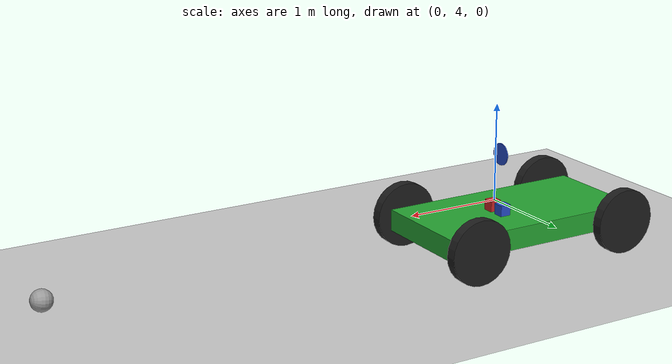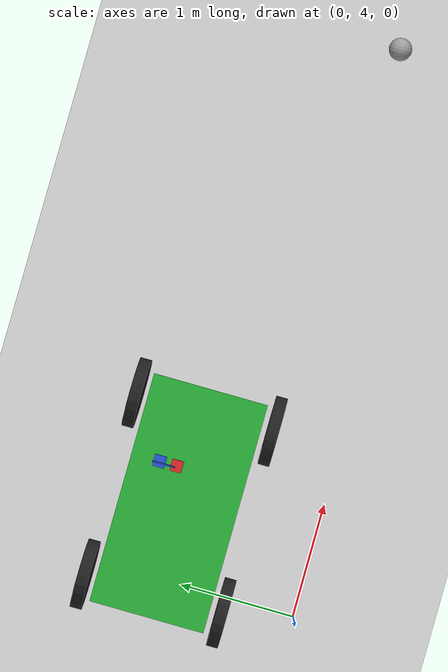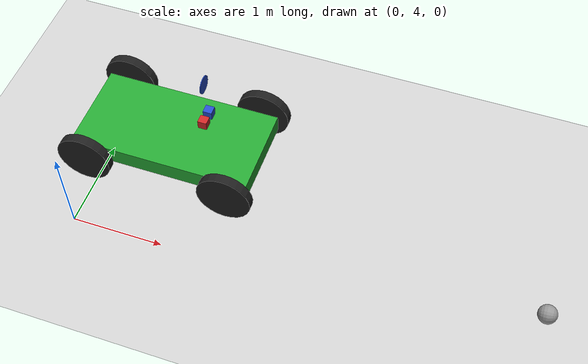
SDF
<sdf version="1.6">
 <world name="default">
  <model name="ground_plane">
   <static>1</static>
   <link name="link">
    <collision name="collision">
     <geometry><plane><normal>0 0 1</normal><size>100 100</size></plane></geometry>
     <surface><friction><ode><mu>100</mu><mu2>50</mu2></ode></friction></surface>
    </collision>
    <visual name="visual">
     <cast_shadows>0</cast_shadows>
     <geometry><plane><normal>0 0 1</normal><size>100 100</size></plane></geometry>
     <material>
      <script><uri>file://media/materials/scripts/gazebo.material</uri><name>Gazebo/Grey</name></script>
     </material>
    </visual>
   </link>
  </model>
  <model name="car">
   <link name="chassis">
    <pose>0 0 0.3 0 -0 0</pose>
    <collision name="collision"><geometry><box><size>2 1 0.2</size></box></geometry></collision>
    <visual name="visual">
     <geometry><box><size>2 1 0.2</size></box></geometry>
     <material>
      <script><uri>file://media/materials/scripts/gazebo.material</uri><name>Gazebo/Green</name></script>
     </material>
    </visual>
    <inertial>
     <inertia><ixx>1</ixx><ixy>0</ixy><ixz>0</ixz><iyy>1</iyy><iyz>0</iyz><izz>1</izz></inertia>
     <mass>1</mass>
    </inertial>
   </link>
   <link name="front_left_wheel">
    <pose>0.8 0.6 0.3 -0 1.5707 1.5707</pose>
    <collision name="collision">
     <geometry><cylinder><radius>0.3</radius><length>0.1</length></cylinder></geometry>
    </collision>
    <visual name="visual">
     <geometry><cylinder><radius>0.3</radius><length>0.1</length></cylinder></geometry>
     <material>
      <script><uri>file://media/materials/scripts/gazebo.material</uri><name>Gazebo/Black</name></script>
     </material>
    </visual>
    <inertial>
     <inertia><ixx>1</ixx><ixy>0</ixy><ixz>0</ixz><iyy>1</iyy><iyz>0</iyz><izz>1</izz></inertia>
     <mass>1</mass>
    </inertial>
   </link>
   <link name="front_right_wheel">
    <pose>0.8 -0.6 0.3 -0 1.5707 1.5707</pose>
    <collision name="collision">
     <geometry><cylinder><radius>0.3</radius><length>0.1</length></cylinder></geometry>
    </collision>
    <visual name="visual">
     <geometry><cylinder><radius>0.3</radius><length>0.1</length></cylinder></geometry>
     <material>
      <script><uri>file://media/materials/scripts/gazebo.material</uri><name>Gazebo/Black</name></script>
     </material>
    </visual>
    <inertial>
     <inertia><ixx>1</ixx><ixy>0</ixy><ixz>0</ixz><iyy>1</iyy><iyz>0</iyz><izz>1</izz></inertia>
     <mass>1</mass>
    </inertial>
   </link>
   <link name="back_right_wheel">
    <pose>-0.8 -0.6 0.3 -0 1.5707 1.5707</pose>
    <collision name="collision">
     <geometry><cylinder><radius>0.3</radius><length>0.1</length></cylinder></geometry>
    </collision>
    <visual name="visual">
     <geometry><cylinder><radius>0.3</radius><length>0.1</length></cylinder></geometry>
     <material>
      <script><uri>file://media/materials/scripts/gazebo.material</uri><name>Gazebo/Black</name></script>
     </material>
    </visual>
    <inertial>
     <inertia><ixx>1</ixx><ixy>0</ixy><ixz>0</ixz><iyy>1</iyy><iyz>0</iyz><izz>1</izz></inertia>
     <mass>1</mass>
    </inertial>
   </link>
   <link name="back_left_wheel">
    <pose>-0.8 0.6 0.3 -0 1.5707 1.5707</pose>
    <collision name="collision">
     <geometry><cylinder><radius>0.3</radius><length>0.1</length></cylinder></geometry>
    </collision>
    <visual name="visual">
     <geometry><cylinder><radius>0.3</radius><length>0.1</length></cylinder></geometry>
     <material>
      <script><uri>file://media/materials/scripts/gazebo.material</uri><name>Gazebo/Black</name></script>
     </material>
    </visual>
    <inertial>
     <inertia><ixx>1</ixx><ixy>0</ixy><ixz>0</ixz><iyy>1</iyy><iyz>0</iyz><izz>1</izz></inertia>
     <mass>1</mass>
    </inertial>
   </link>
   <link name="gas_pedal">
    <pose>0.3 0.1 0.5 0 -0 0</pose>
    <collision name="collision"><geometry><box><size>0.1 0.1 0.1</size></box></geometry></collision>
    <visual name="visual">
     <geometry><box><size>0.1 0.1 0.1</size></box></geometry>
     <material>
      <script><uri>file://media/materials/scripts/gazebo.material</uri><name>Gazebo/Red</name></script>
     </material>
    </visual>
    <inertial>
     <inertia><ixx>1</ixx><ixy>0</ixy><ixz>0</ixz><iyy>1</iyy><iyz>0</iyz><izz>1</izz></inertia>
     <mass>1</mass>
    </inertial>
   </link>
   <link name="brake_pedal">
    <pose>0.3 0.25 0.5 0 -0 0</pose>
    <collision name="collision"><geometry><box><size>0.1 0.1 0.1</size></box></geometry></collision>
    <visual name="visual">
     <geometry><box><size>0.1 0.1 0.1</size></box></geometry>
     <material>
      <script><uri>file://media/materials/scripts/gazebo.material</uri><name>Gazebo/Blue</name></script>
     </material>
    </visual>
    <inertial>
     <inertia><ixx>1</ixx><ixy>0</ixy><ixz>0</ixz><iyy>1</iyy><iyz>0</iyz><izz>1</izz></inertia>
     <mass>1</mass>
    </inertial>
   </link>
   <link name="steering_wheel">
    <pose>0.3 0.2 1 0 1.5707 0</pose>
    <collision name="collision">
     <geometry><cylinder><radius>0.1</radius><length>0.01</length></cylinder></geometry>
    </collision>
    <visual name="visual">
     <geometry><cylinder><radius>0.1</radius><length>0.01</length></cylinder></geometry>
     <material>
      <script><uri>file://media/materials/scripts/gazebo.material</uri><name>Gazebo/Blue</name></script>
     </material>
    </visual>
    <inertial>
     <inertia><ixx>1</ixx><ixy>0</ixy><ixz>0</ixz><iyy>1</iyy><iyz>0</iyz><izz>1</izz></inertia>
     <mass>1</mass>
    </inertial>
   </link>
   <joint name="gas_joint" type="prismatic">
    <parent>chassis</parent>
    <child>gas_pedal</child>
    <axis>
     <xyz>1 0 0</xyz>
     <limit><lower>0</lower><upper>0.2</upper></limit>
     <use_parent_model_frame>1</use_parent_model_frame>
     <dynamics><spring_reference>0</spring_reference><spring_stiffness>0</spring_stiffness></dynamics>
    </axis>
   </joint>
   <joint name="brake_joint" type="prismatic">
    <parent>chassis</parent>
    <child>brake_pedal</child>
    <axis>
     <xyz>1 0 0</xyz>
     <limit><lower>0</lower><upper>0.2</upper></limit>
     <use_parent_model_frame>1</use_parent_model_frame>
     <dynamics><spring_reference>0</spring_reference><spring_stiffness>0</spring_stiffness></dynamics>
    </axis>
   </joint>
   <joint name="steering_joint" type="revolute">
    <parent>chassis</parent>
    <child>steering_wheel</child>
    <axis>
     <xyz>1 0 0</xyz>
     <limit><lower>-7.853</lower><upper>7.853</upper></limit>
     <use_parent_model_frame>1</use_parent_model_frame>
     <dynamics><spring_reference>0</spring_reference><spring_stiffness>0</spring_stiffness></dynamics>
    </axis>
   </joint>
   <joint name="front_left_joint" type="revolute2">
    <parent>chassis</parent>
    <child>front_left_wheel</child>
    <axis>
     <xyz>0 0 1</xyz>
     <limit><lower>8.63059e-06</lower><upper>8.63059e-06</upper></limit>
     <use_parent_model_frame>1</use_parent_model_frame>
     <dynamics><spring_reference>0</spring_reference><spring_stiffness>0</spring_stiffness></dynamics>
    </axis>
    <axis2>
     <xyz>0 1 0</xyz>
     <use_parent_model_frame>1</use_parent_model_frame>
     <dynamics><spring_reference>0</spring_reference><spring_stiffness>0</spring_stiffness></dynamics>
    </axis2>
    <physics><ode><limit><cfm>0</cfm><erp>0.9</erp></limit></ode></physics>
   </joint>
   <joint name="front_right_joint" type="revolute2">
    <parent>chassis</parent>
    <child>front_right_wheel</child>
    <axis>
     <xyz>0 0 1</xyz>
     <limit><lower>8.63059e-06</lower><upper>8.63059e-06</upper></limit>
     <use_parent_model_frame>1</use_parent_model_frame>
     <dynamics><spring_reference>0</spring_reference><spring_stiffness>0</spring_stiffness></dynamics>
    </axis>
    <axis2>
     <xyz>0 1 0</xyz>
     <use_parent_model_frame>1</use_parent_model_frame>
     <dynamics><spring_reference>0</spring_reference><spring_stiffness>0</spring_stiffness></dynamics>
    </axis2>
    <physics><ode><limit><cfm>0</cfm><erp>0.9</erp></limit></ode></physics>
   </joint>
   <joint name="back_right_joint" type="revolute2">
    <parent>chassis</parent>
    <child>back_right_wheel</child>
    <axis>
     <xyz>0 0 1</xyz>
     <limit><lower>0</lower><upper>0</upper></limit>
     <use_parent_model_frame>1</use_parent_model_frame>
     <dynamics><spring_reference>0</spring_reference><spring_stiffness>0</spring_stiffness></dynamics>
    </axis>
    <axis2>
     <xyz>0 1 0</xyz>
     <use_parent_model_frame>1</use_parent_model_frame>
     <dynamics><spring_reference>0</spring_reference><spring_stiffness>0</spring_stiffness></dynamics>
    </axis2>
    <physics><ode><limit><cfm>0</cfm><erp>0.9</erp></limit></ode></physics>
   </joint>
   <joint name="back_left_joint" type="revolute2">
    <parent>chassis</parent>
    <child>back_left_wheel</child>
    <axis>
     <xyz>0 0 1</xyz>
     <limit><lower>0</lower><upper>0</upper></limit>
     <use_parent_model_frame>1</use_parent_model_frame>
     <dynamics><spring_reference>0</spring_reference><spring_stiffness>0</spring_stiffness></dynamics>
    </axis>
    <axis2>
     <xyz>0 1 0</xyz>
     <use_parent_model_frame>1</use_parent_model_frame>
     <dynamics><spring_reference>0</spring_reference><spring_stiffness>0</spring_stiffness></dynamics>
    </axis2>
    <physics><ode><limit><cfm>0</cfm><erp>0.9</erp></limit></ode></physics>
   </joint>
   <plugin name="vehicle" filename="libVehiclePlugin.so">
    <front_left>front_left_joint</front_left>
    <front_right>front_right_joint</front_right>
    <back_left>back_left_joint</back_left>
    <back_right>back_right_joint</back_right>
    <gas>gas_joint</gas>
    <brake>brake_joint</brake>
    <steering>steering_joint</steering>
    <front_power>10</front_power>
    <rear_power>10</rear_power>
    <tire_angle_range>0.5</tire_angle_range>
    <max_speed>10</max_speed>
    <aero_load>0.1</aero_load>
   </plugin>
   <pose>0.688942 5.20543 -0.002605 -0.000272 0.00092 0.000104</pose>
  </model>
  <model name="my_ball">
   <link name="link_0">
    <inertial>
     <mass>1</mass>
     <inertia><ixx>0.1</ixx><ixy>0</ixy><ixz>0</ixz><iyy>0.1</iyy><iyz>0</iyz><izz>0.1</izz></inertia>
     <pose>0.5 0 0 0 -0 0</pose>
    </inertial>
    <visual name="visual">
     <geometry><sphere><radius>0.1</radius></sphere></geometry>
     <material>
      <lighting>1</lighting>
      <script><uri>file://media/materials/scripts/gazebo.material</uri><name>Gazebo/Grey</name></script>
      <ambient>1 1 1 1</ambient>
      <diffuse>1 1 1 1</diffuse>
      <specular>1 1 1 1</specular>
      <emissive>1 1 1 1</emissive>
      <shader type="vertex"><normal_map>__default__</normal_map></shader>
     </material>
    </visual>
    <collision name="collision">
     <geometry><sphere><radius>0.1</radius></sphere></geometry>
     <surface>
      <friction>
       <ode><mu>1</mu><mu2>1</mu2><fdir1>0 0 0</fdir1><slip1>0</slip1><slip2>0</slip2></ode>
       <torsional>
        <coefficient>1</coefficient>
        <patch_radius>0</patch_radius>
        <surface_radius>0</surface_radius>
        <use_patch_radius>1</use_patch_radius>
        <ode><slip>0</slip></ode>
       </torsional>
      </friction>
      <bounce><restitution_coefficient>0</restitution_coefficient><threshold>1e+06</threshold></bounce>
      <contact>
       <collide_without_contact>0</collide_without_contact>
       <collide_without_contact_bitmask>1</collide_without_contact_bitmask>
       <collide_bitmask>1</collide_bitmask>
       <ode>
        <soft_cfm>0</soft_cfm>
        <soft_erp>0.2</soft_erp>
        <kp>1e+13</kp>
        <kd>1</kd>
        <max_vel>0.01</max_vel>
        <min_depth>0</min_depth>
       </ode>
       <bullet>
        <split_impulse>1</split_impulse>
        <split_impulse_penetration_threshold>-0.01</split_impulse_penetration_threshold>
        <soft_cfm>0</soft_cfm>
        <soft_erp>0.2</soft_erp>
        <kp>1e+13</kp>
        <kd>1</kd>
       </bullet>
      </contact>
     </surface>
    </collision>
   </link>
   <static>0</static>
   <pose>4.94674 4.44081 0.099999 0 1.42751 0</pose>
  </model>
 </world>
</sdf>
